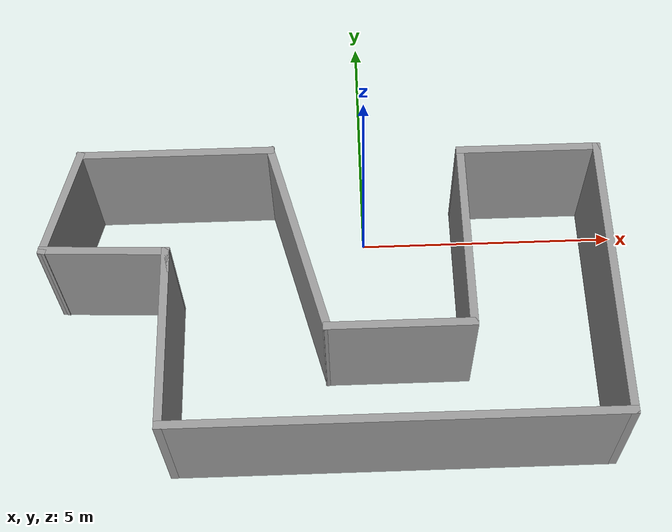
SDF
<?xml version='1.0'?>
<sdf version='1.6'>
  <model name='room'>
    <pose frame=''>-0.718415 -1.94717 0 0 -0 0</pose>
    <link name='Wall_0'>
      <collision name='Wall_0_Collision'>
        <geometry>
          <box>
            <size>0.5 0.15 2.5</size>
          </box>
        </geometry>
        <pose frame=''>0 0 1.25 0 -0 0</pose>
      </collision>
      <visual name='Wall_0_Visual'>
        <pose frame=''>0 0 1.25 0 -0 0</pose>
        <geometry>
          <box>
            <size>0.5 0.15 2.5</size>
          </box>
        </geometry>
        <material>
          <script>
            <uri>file://media/materials/scripts/gazebo.material</uri>
            <name>Gazebo/Grey</name>
          </script>
          <ambient>1 1 1 1</ambient>
        </material>
        <meta>
          <layer>0</layer>
        </meta>
      </visual>
      <pose frame=''>-2.92159 0.432165 0 0 -0 1.5708</pose>
    </link>
    <link name='Wall_1'>
      <collision name='Wall_1_Collision'>
        <geometry>
          <box>
            <size>3.5 0.15 2.5</size>
          </box>
        </geometry>
        <pose frame=''>0 0 1.25 0 -0 0</pose>
      </collision>
      <visual name='Wall_1_Visual'>
        <pose frame=''>0 0 1.25 0 -0 0</pose>
        <geometry>
          <box>
            <size>3.5 0.15 2.5</size>
          </box>
        </geometry>
        <material>
          <script>
            <uri>file://media/materials/scripts/gazebo.material</uri>
            <name>Gazebo/Grey</name>
          </script>
          <ambient>1 1 1 1</ambient>
        </material>
        <meta>
          <layer>0</layer>
        </meta>
      </visual>
      <pose frame=''>-2.92159 -1.06784 0 0 0 -1.5708</pose>
    </link>
    <link name='Wall_10'>
      <collision name='Wall_10_Collision'>
        <geometry>
          <box>
            <size>2.3918 0.15 2.5</size>
          </box>
        </geometry>
        <pose frame=''>0 0 1.25 0 -0 0</pose>
      </collision>
      <visual name='Wall_10_Visual'>
        <pose frame=''>0 0 1.25 0 -0 0</pose>
        <geometry>
          <box>
            <size>2.3918 0.15 2.5</size>
          </box>
        </geometry>
        <material>
          <script>
            <uri>file://media/materials/scripts/gazebo.material</uri>
            <name>Gazebo/Grey</name>
          </script>
          <ambient>1 1 1 1</ambient>
        </material>
        <meta>
          <layer>0</layer>
        </meta>
      </visual>
      <pose frame=''>-4.04157 0.65235 0 0 0 -0.040322</pose>
    </link>
    <link name='Wall_2'>
      <collision name='Wall_2_Collision'>
        <geometry>
          <box>
            <size>8.25 0.15 2.5</size>
          </box>
        </geometry>
        <pose frame=''>0 0 1.25 0 -0 0</pose>
      </collision>
      <visual name='Wall_2_Visual'>
        <pose frame=''>0 0 1.25 0 -0 0</pose>
        <geometry>
          <box>
            <size>8.25 0.15 2.5</size>
          </box>
        </geometry>
        <material>
          <script>
            <uri>file://media/materials/scripts/gazebo.material</uri>
            <name>Gazebo/Grey</name>
          </script>
          <ambient>1 1 1 1</ambient>
        </material>
        <meta>
          <layer>0</layer>
        </meta>
      </visual>
      <pose frame=''>1.12841 -2.74283 0 0 -0 0</pose>
    </link>
    <link name='Wall_3'>
      <collision name='Wall_3_Collision'>
        <geometry>
          <box>
            <size>5.5 0.15 2.5</size>
          </box>
        </geometry>
        <pose frame=''>0 0 1.25 0 -0 0</pose>
      </collision>
      <visual name='Wall_3_Visual'>
        <pose frame=''>0 0 1.25 0 -0 0</pose>
        <geometry>
          <box>
            <size>5.5 0.15 2.5</size>
          </box>
        </geometry>
        <material>
          <script>
            <uri>file://media/materials/scripts/gazebo.material</uri>
            <name>Gazebo/Grey</name>
          </script>
          <ambient>1 1 1 1</ambient>
        </material>
        <meta>
          <layer>0</layer>
        </meta>
      </visual>
      <pose frame=''>5.17842 -0.067835 0 0 -0 1.5708</pose>
    </link>
    <link name='Wall_4'>
      <collision name='Wall_4_Collision'>
        <geometry>
          <box>
            <size>2.75 0.15 2.5</size>
          </box>
        </geometry>
        <pose frame=''>0 0 1.25 0 -0 0</pose>
      </collision>
      <visual name='Wall_4_Visual'>
        <pose frame=''>0 0 1.25 0 -0 0</pose>
        <geometry>
          <box>
            <size>2.75 0.15 2.5</size>
          </box>
        </geometry>
        <material>
          <script>
            <uri>file://media/materials/scripts/gazebo.material</uri>
            <name>Gazebo/Grey</name>
          </script>
          <ambient>1 1 1 1</ambient>
        </material>
        <meta>
          <layer>0</layer>
        </meta>
      </visual>
      <pose frame=''>3.87841 2.60717 0 0 -0 3.14159</pose>
    </link>
    <link name='Wall_5'>
      <collision name='Wall_5_Collision'>
        <geometry>
          <box>
            <size>3.75 0.15 2.5</size>
          </box>
        </geometry>
        <pose frame=''>0 0 1.25 0 -0 0</pose>
      </collision>
      <visual name='Wall_5_Visual'>
        <pose frame=''>0 0 1.25 0 -0 0</pose>
        <geometry>
          <box>
            <size>3.75 0.15 2.5</size>
          </box>
        </geometry>
        <material>
          <script>
            <uri>file://media/materials/scripts/gazebo.material</uri>
            <name>Gazebo/Grey</name>
          </script>
          <ambient>1 1 1 1</ambient>
        </material>
        <meta>
          <layer>0</layer>
        </meta>
      </visual>
      <pose frame=''>2.57842 0.807165 0 0 0 -1.5708</pose>
    </link>
    <link name='Wall_6'>
      <collision name='Wall_6_Collision'>
        <geometry>
          <box>
            <size>2.75 0.15 2.5</size>
          </box>
        </geometry>
        <pose frame=''>0 0 1.25 0 -0 0</pose>
      </collision>
      <visual name='Wall_6_Visual'>
        <pose frame=''>0 0 1.25 0 -0 0</pose>
        <geometry>
          <box>
            <size>2.75 0.15 2.5</size>
          </box>
        </geometry>
        <material>
          <script>
            <uri>file://media/materials/scripts/gazebo.material</uri>
            <name>Gazebo/Grey</name>
          </script>
          <ambient>1 1 1 1</ambient>
        </material>
        <meta>
          <layer>0</layer>
        </meta>
      </visual>
      <pose frame=''>1.27842 -0.992835 0 0 -0 3.14159</pose>
    </link>
    <link name='Wall_7'>
      <collision name='Wall_7_Collision'>
        <geometry>
          <box>
            <size>4 0.15 2.5</size>
          </box>
        </geometry>
        <pose frame=''>0 0 1.25 0 -0 0</pose>
      </collision>
      <visual name='Wall_7_Visual'>
        <pose frame=''>0 0 1.25 0 -0 0</pose>
        <geometry>
          <box>
            <size>4 0.15 2.5</size>
          </box>
        </geometry>
        <material>
          <script>
            <uri>file://media/materials/scripts/gazebo.material</uri>
            <name>Gazebo/Grey</name>
          </script>
          <ambient>1 1 1 1</ambient>
        </material>
        <meta>
          <layer>0</layer>
        </meta>
      </visual>
      <pose frame=''>-0.519812 0.866572 0 0 -0 1.8326</pose>
    </link>
    <link name='Wall_8'>
      <collision name='Wall_8_Collision'>
        <geometry>
          <box>
            <size>3.75 0.15 2.5</size>
          </box>
        </geometry>
        <pose frame=''>0 0 1.25 0 -0 0</pose>
      </collision>
      <visual name='Wall_8_Visual'>
        <pose frame=''>0 0 1.25 0 -0 0</pose>
        <geometry>
          <box>
            <size>3.75 0.15 2.5</size>
          </box>
        </geometry>
        <material>
          <script>
            <uri>file://media/materials/scripts/gazebo.material</uri>
            <name>Gazebo/Grey</name>
          </script>
          <ambient>1 1 1 1</ambient>
        </material>
        <meta>
          <layer>0</layer>
        </meta>
      </visual>
      <pose frame=''>-2.81804 2.72598 0 0 -0 3.14159</pose>
    </link>
    <link name='Wall_9'>
      <collision name='Wall_9_Collision'>
        <geometry>
          <box>
            <size>2.25 0.15 2.5</size>
          </box>
        </geometry>
        <pose frame=''>0 0 1.25 0 -0 0</pose>
      </collision>
      <visual name='Wall_9_Visual'>
        <pose frame=''>0 0 1.25 0 -0 0</pose>
        <geometry>
          <box>
            <size>2.25 0.15 2.5</size>
          </box>
        </geometry>
        <material>
          <script>
            <uri>file://media/materials/scripts/gazebo.material</uri>
            <name>Gazebo/Grey</name>
          </script>
          <ambient>1 1 1 1</ambient>
        </material>
        <meta>
          <layer>0</layer>
        </meta>
      </visual>
      <pose frame=''>-4.8898 1.71176 0 0 0 -1.8326</pose>
    </link>
    <static>1</static>
  </model>
</sdf>
